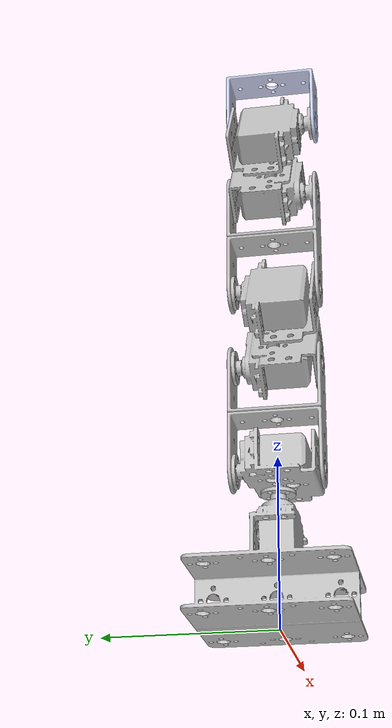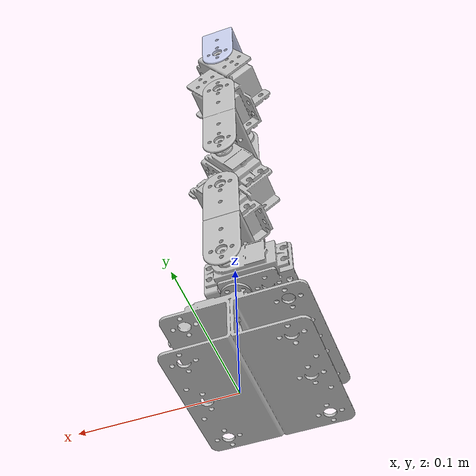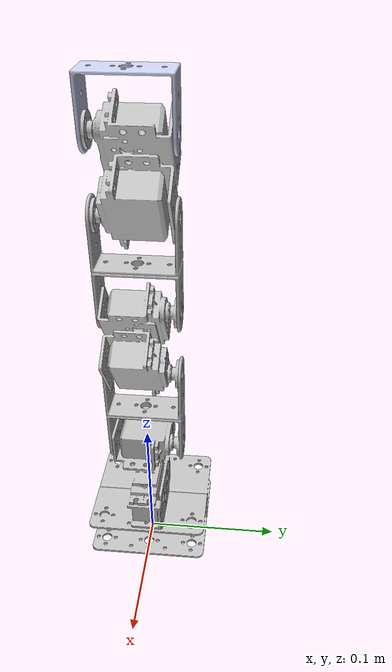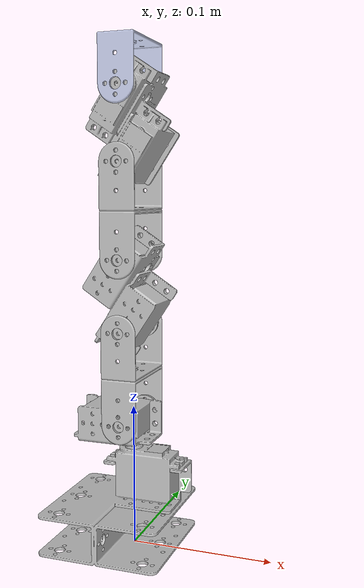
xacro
<robot
  name="servo_bot" xmlns:xacro="http://www.ros.org/wiki/xacro">

<link name = "world"/>
<joint name="base_joint" type="fixed">
    <parent link="world"/>
    <child link="base_link"/>
  </joint>

  <link
    name="base_link">
    <inertial>
      <origin
        xyz="-0.0011884 0.00055308 0.032694"
        rpy="0 0 0" />
      <mass
        value="0.072744" />
      <inertia
        ixx="6.2559E-05"
        ixy="-4.4148E-07"
        ixz="-1.3886E-05"
        iyy="6.8098E-05"
        iyz="-5.8879E-07"
        izz="5.8102E-05" />
    </inertial>
    <visual>
      <origin
        xyz="0 0 0"
        rpy="0 0 0" />
      <geometry>
        <mesh
          filename="package://servobot_description/meshes/base_link.STL" />
      </geometry>
      <material
        name="">
        <color
          rgba="0.75294 0.75294 0.75294 1" />
      </material>
    </visual>
    <collision>
      <origin
        xyz="0 0 0"
        rpy="0 0 0" />
      <geometry>
        <mesh
          filename="package://servobot_description/meshes/base_link.STL" />
      </geometry>
    </collision>
  </link>
  <link
    name="link0">
    <inertial>
      <origin
        xyz="-0.0101720623867661 -0.00205290963860256 0.012361658061321"
        rpy="0 0 0" />
      <mass
        value="0.0353436334303481" />
      <inertia
        ixx="6.46825031271082E-06"
        ixy="-2.72245592681754E-07"
        ixz="-1.55883494608516E-08"
        iyy="7.15404017730778E-06"
        iyz="-1.85817896870057E-07"
        izz="1.0660821619004E-05" />
    </inertial>
    <visual>
      <origin
        xyz="0 0 0"
        rpy="0 0 0" />
      <geometry>
        <mesh
          filename="package://servobot_description/meshes/link0.STL" />
      </geometry>
      <material
        name="">
        <color
          rgba="0.752941176470588 0.752941176470588 0.752941176470588 1" />
      </material>
    </visual>
    <collision>
      <origin
        xyz="0 0 0"
        rpy="0 0 0" />
      <geometry>
        <mesh
          filename="package://servobot_description/meshes/link0.STL" />
      </geometry>
    </collision>
  </link>
  <joint
    name="joint0"
    type="revolute">
    <origin
      xyz="0 0 0.079"
      rpy="0 6.5995E-17 0" />
    <parent
      link="base_link" />
    <child
      link="link0" />
    <axis
      xyz="0 0 1" />
    <limit
      lower="-1.2"
      upper="1.2"
      effort="5"
      velocity="2" />
  </joint>
  <link
    name="link1">
    <inertial>
      <origin
        xyz="0.00114052336371454 -0.0235000000018582 0.0329742722703748"
        rpy="0 0 0" />
      <mass
        value="0.0120474627151407" />
      <inertia
        ixx="1.02107315156678E-05"
        ixy="3.1471283661672E-21"
        ixz="-5.79802302009495E-22"
        iyy="4.76556246275553E-06"
        iyz="1.41077143719453E-21"
        izz="6.69555625904619E-06" />
    </inertial>
    <visual>
      <origin
        xyz="0 0 0"
        rpy="0 0 0" />
      <geometry>
        <mesh
          filename="package://servobot_description/meshes/link1.STL" />
      </geometry>
      <material
        name="">
        <color
          rgba="0.752941176470588 0.752941176470588 0.752941176470588 1" />
      </material>
    </visual>
    <collision>
      <origin
        xyz="0 0 0"
        rpy="0 0 0" />
      <geometry>
        <mesh
          filename="package://servobot_description/meshes/link1.STL" />
      </geometry>
    </collision>
  </link>
  <joint
    name="joint1"
    type="revolute">
    <origin
      xyz="-0.0017905 0.0235 0.012526"
      rpy="0 -2.8284E-17 0" />
    <parent
      link="link0" />
    <child
      link="link1" />
    <axis
      xyz="0 -1 0" />
    <limit
      lower="-1.2"
      upper="1.2"
      effort="5"
      velocity="2" />
  </joint>
  <link
    name="link2">
    <inertial>
      <origin
        xyz="-6.50900167098456E-12 -0.0270528745593164 0.0244207390899418"
        rpy="0 0 0" />
      <mass
        value="0.0706874109013024" />
      <inertia
        ixx="3.65612071927322E-05"
        ixy="-8.05347051906259E-15"
        ixz="9.86248110292613E-07"
        iyy="3.33976734616283E-05"
        iyz="-5.4605394972078E-14"
        izz="1.67866182102254E-05" />
    </inertial>
    <visual>
      <origin
        xyz="0 0 0"
        rpy="0 0 0" />
      <geometry>
        <mesh
          filename="package://servobot_description/meshes/link2.STL" />
      </geometry>
      <material
        name="">
        <color
          rgba="0.752941176470588 0.752941176470588 0.752941176470588 1" />
      </material>
    </visual>
    <collision>
      <origin
        xyz="0 0 0"
        rpy="0 0 0" />
      <geometry>
        <mesh
          filename="package://servobot_description/meshes/link2.STL" />
      </geometry>
    </collision>
  </link>
  <joint
    name="joint2"
    type="revolute">
    <origin
      xyz="0.0011405 0.0015 0.064974"
      rpy="0 0 0" />
    <parent
      link="link1" />
    <child
      link="link2" />
    <axis
      xyz="0 -1 0" />
    <limit
      lower="-1.57"
      upper="1.57"
      effort="5"
      velocity="2" />
  </joint>
  <link
    name="link3">
    <inertial>
      <origin
        xyz="2.77555756156289E-17 -0.025 0.032"
        rpy="0 0 0" />
      <mass
        value="0.0120474627151407" />
      <inertia
        ixx="1.02107315156678E-05"
        ixy="6.31492620960283E-21"
        ixz="4.15309456082725E-22"
        iyy="4.76556246275553E-06"
        iyz="1.28684174431287E-21"
        izz="6.69555625904619E-06" />
    </inertial>
    <visual>
      <origin
        xyz="0 0 0"
        rpy="0 0 0" />
      <geometry>
        <mesh
          filename="package://servobot_description/meshes/link3.STL" />
      </geometry>
      <material
        name="">
        <color
          rgba="0.752941176470588 0.752941176470588 0.752941176470588 1" />
      </material>
    </visual>
    <collision>
      <origin
        xyz="0 0 0"
        rpy="0 0 0" />
      <geometry>
        <mesh
          filename="package://servobot_description/meshes/link3.STL" />
      </geometry>
    </collision>
  </link>
  <joint
    name="joint3"
    type="revolute">
    <origin
      xyz="0 0 0.048841"
      rpy="0 0 0" />
    <parent
      link="link2" />
    <child
      link="link3" />
    <axis
      xyz="0 -1 0" />
    <limit
      lower="-1.2"
      upper="1.2"
      effort="5"
      velocity="2" />
  </joint>
  <link
    name="link4">
    <inertial>
      <origin
        xyz="-4.16333634234434E-17 0.0270528745360344 0.0244207391370531"
        rpy="0 0 0" />
      <mass
        value="0.070687410752001" />
      <inertia
        ixx="3.65722048848125E-05"
        ixy="1.99052742604761E-20"
        ixz="9.79268936473673E-07"
        iyy="3.3413080447352E-05"
        iyz="1.64112633530521E-20"
        izz="1.67910274372389E-05" />
    </inertial>
    <visual>
      <origin
        xyz="0 0 0"
        rpy="0 0 0" />
      <geometry>
        <mesh
          filename="package://servobot_description/meshes/link4.STL" />
      </geometry>
      <material
        name="">
        <color
          rgba="0.752941176470588 0.752941176470588 0.752941176470588 1" />
      </material>
    </visual>
    <collision>
      <origin
        xyz="0 0 0"
        rpy="0 0 0" />
      <geometry>
        <mesh
          filename="package://servobot_description/meshes/link4.STL" />
      </geometry>
    </collision>
  </link>
  <joint
    name="joint4"
    type="revolute">
    <origin
      xyz="0 -0.05 0.064"
      rpy="0 0 0" />
    <parent
      link="link3" />
    <child
      link="link4" />
    <axis
      xyz="0 -1 0" />
    <limit
      lower="-1.2"
      upper="1.2"
      effort="5"
      velocity="2" />
  </joint>
  <link
    name="link5">
    <inertial>
      <origin
        xyz="-0.00144236036078239 -0.0235000000018581 0.0195477489741051"
        rpy="0 0 0" />
      <mass
        value="0.00602373135757036" />
      <inertia
        ixx="4.1085324849624E-06"
        ixy="4.29879362068518E-21"
        ixz="-1.17932938173794E-21"
        iyy="1.38594795850627E-06"
        iyz="7.24403992241584E-21"
        izz="3.3477781295231E-06" />
    </inertial>
    <visual>
      <origin
        xyz="0 0 0"
        rpy="0 0 0" />
      <geometry>
        <mesh
          filename="package://servobot_description/meshes/link5.STL" />
      </geometry>
      <material
        name="">
        <color
          rgba="0.792156862745098 0.819607843137255 0.933333333333333 1" />
      </material>
    </visual>
    <collision>
      <origin
        xyz="0 0 0"
        rpy="0 0 0" />
      <geometry>
        <mesh
          filename="package://servobot_description/meshes/link5.STL" />
      </geometry>
    </collision>
  </link>
  <joint
    name="joint5"
    type="revolute">
    <origin
      xyz="-0.0014424 0.0015 0.04843"
      rpy="0 -3.7711E-17 3.1416" />
    <parent
      link="link4" />
    <child
      link="link5" />
    <axis
      xyz="0 1 0" />
    <limit
      lower="-1.2"
      upper="1.2"
      effort="5"
      velocity="2" />
  </joint>

<!--transmission-->
<transmission name="tran0">
    <type>transmission_interface/SimpleTransmission</type>
    <joint name="joint0">
      <hardwareInterface>hardware_interface/EffortJointInterface</hardwareInterface>
    </joint>
    <actuator name="motor0">
      <mechanicalReduction>1</mechanicalReduction>
      <hardwareInterface>hardware_interface/EffortJointInterface</hardwareInterface>

    </actuator>
  </transmission>

<transmission name="tran1">
    <type>transmission_interface/SimpleTransmission</type>
    <joint name="joint1">
      <hardwareInterface>hardware_interface/EffortJointInterface</hardwareInterface>
    </joint>
    <actuator name="motor1">
      <mechanicalReduction>1</mechanicalReduction>
      <hardwareInterface>hardware_interface/EffortJointInterface</hardwareInterface>
    </actuator>
  </transmission>

<transmission name="tran2">
    <type>transmission_interface/SimpleTransmission</type>
    <joint name="joint2">
      <hardwareInterface>hardware_interface/EffortJointInterface</hardwareInterface>
    </joint>
    <actuator name="motor2">
      <mechanicalReduction>1</mechanicalReduction>
      <hardwareInterface>hardware_interface/EffortJointInterface</hardwareInterface>
    </actuator>
  </transmission>

<transmission name="tran3">
    <type>transmission_interface/SimpleTransmission</type>
    <joint name="joint3">
      <hardwareInterface>hardware_interface/EffortJointInterface</hardwareInterface>
    </joint>
    <actuator name="motor3">
      <mechanicalReduction>1</mechanicalReduction>
      <hardwareInterface>hardware_interface/EffortJointInterface</hardwareInterface>
    </actuator>
  </transmission>

<transmission name="tran4">
    <type>transmission_interface/SimpleTransmission</type>
    <joint name="joint4">
      <hardwareInterface>hardware_interface/EffortJointInterface</hardwareInterface>
    </joint>
    <actuator name="motor4">
      <mechanicalReduction>1</mechanicalReduction>
      <hardwareInterface>hardware_interface/EffortJointInterface</hardwareInterface>
    </actuator>
  </transmission>

<transmission name="tran5">
    <type>transmission_interface/SimpleTransmission</type>
    <joint name="joint5">
      <hardwareInterface>hardware_interface/EffortJointInterface</hardwareInterface>
    </joint>
    <actuator name="motor5">
      <mechanicalReduction>1</mechanicalReduction>
      <hardwareInterface>hardware_interface/EffortJointInterface</hardwareInterface>
    </actuator>
  </transmission>

</robot>
